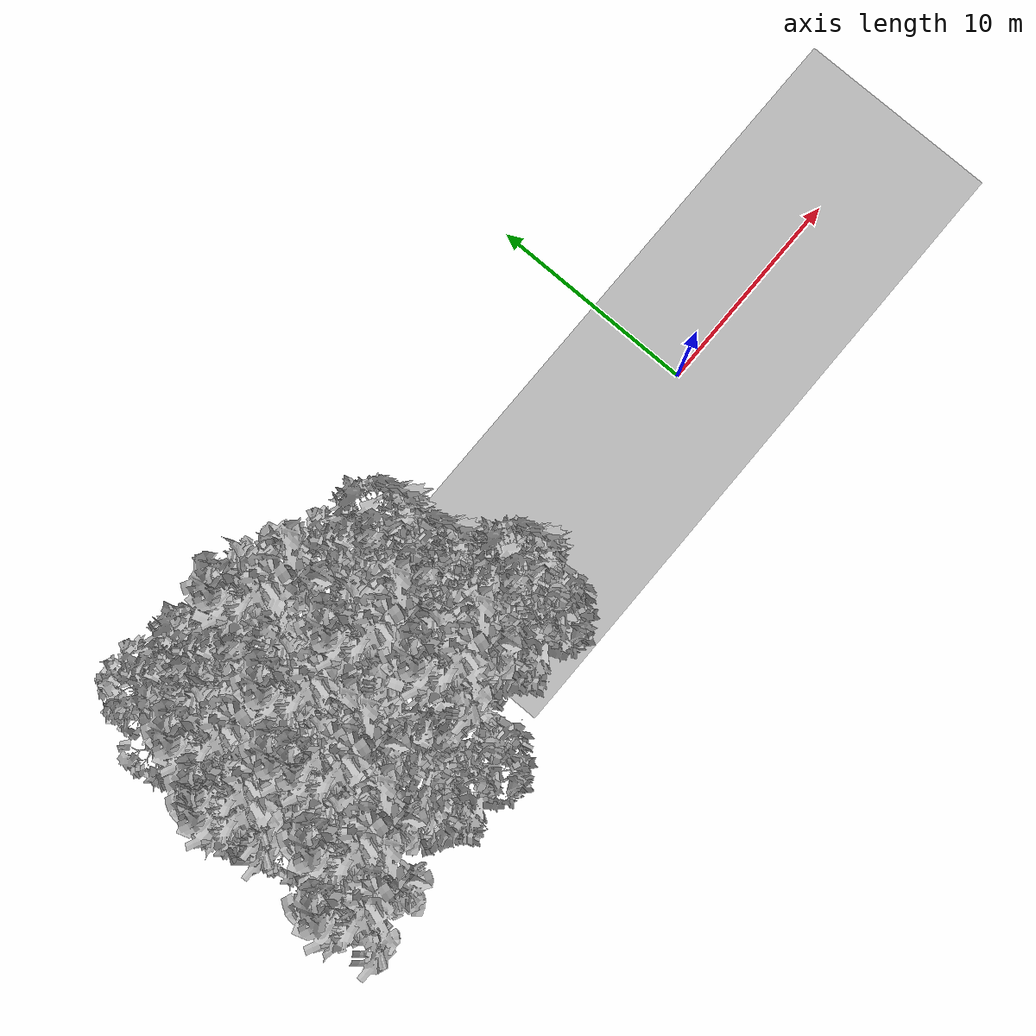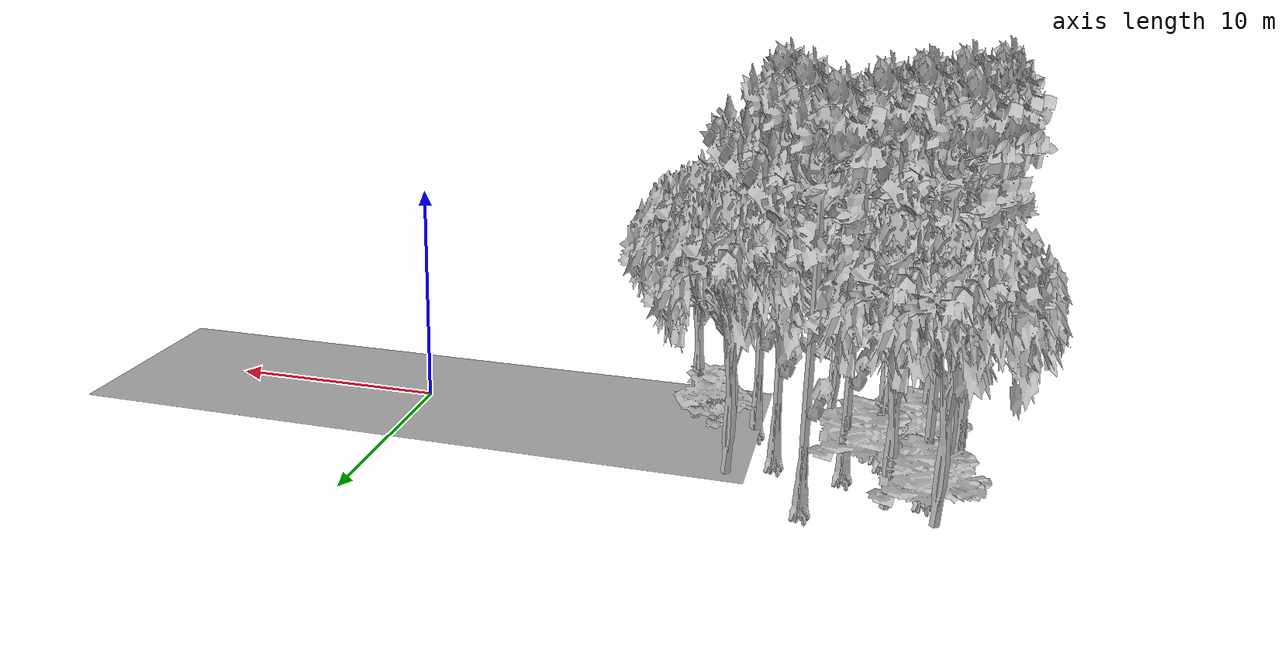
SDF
<sdf version="1.7">
 <world name="default">
  <model name="ground_plane">
   <static>1</static>
   <link name="link">
    <collision name="collision">
     <pose>-50 0 0 0 -0 0</pose>
     <geometry><plane><normal>0 0 1</normal><size>100 100</size></plane></geometry>
     <surface><contact><ode><min_depth>0.01</min_depth><max_vel>0</max_vel></ode></contact></surface>
    </collision>
    <visual name="grass">
     <cast_shadows>0</cast_shadows>
     <geometry>
      <mesh>
       <scale>0.5814285714285714 0.18142857142857144 0.1</scale>
       <uri>file://grass_plane/meshes/grass_plane.dae</uri>
      </mesh>
     </geometry>
    </visual>
   </link>
  </model>
  <model name="Tree 47">
   <static>1</static>
   <pose>-22.75616973259454 -0.32253832700187246 0 1.57079 -0 0</pose>
   <link name="link">
    <collision name="collision">
     <geometry><mesh><scale>3.5 5 3.5</scale><uri>model://tree_2/meshes/tree_2.obj</uri></mesh></geometry>
    </collision>
    <visual name="visual">
     <geometry><mesh><scale>3.5 5 3.5</scale><uri>model://tree_2/meshes/tree_2.obj</uri></mesh></geometry>
    </visual>
   </link>
  </model>
  <model name="Tree 49">
   <static>1</static>
   <pose>-20.24460554701781 1.1467806918927543 0 1.57079 -0 0</pose>
   <link name="link">
    <collision name="collision">
     <geometry><mesh><scale>3 2 3</scale><uri>model://tree_3/meshes/tree_3.obj</uri></mesh></geometry>
    </collision>
    <visual name="visual">
     <geometry><mesh><scale>3 2 3</scale><uri>model://tree_3/meshes/tree_3.obj</uri></mesh></geometry>
    </visual>
   </link>
  </model>
  <model name="Tree 56">
   <static>1</static>
   <pose>-14.953566524341966 4.036179544567759 0 1.57079 -0 0</pose>
   <link name="link">
    <collision name="collision">
     <geometry><mesh><scale>3.5 5 3.5</scale><uri>model://tree_2/meshes/tree_2.obj</uri></mesh></geometry>
    </collision>
    <visual name="visual">
     <geometry><mesh><scale>3.5 5 3.5</scale><uri>model://tree_2/meshes/tree_2.obj</uri></mesh></geometry>
    </visual>
   </link>
  </model>
  <model name="Tree 63">
   <static>1</static>
   <pose>-23.623978122664845 2.316026199521385 0 1.57079 -0 0</pose>
   <link name="link">
    <collision name="collision">
     <geometry><mesh><scale>3.5 5 3.5</scale><uri>model://tree_2/meshes/tree_2.obj</uri></mesh></geometry>
    </collision>
    <visual name="visual">
     <geometry><mesh><scale>3.5 5 3.5</scale><uri>model://tree_2/meshes/tree_2.obj</uri></mesh></geometry>
    </visual>
   </link>
  </model>
  <model name="Tree 66">
   <static>1</static>
   <pose>-22.752621306044094 3.8711710879960286 0 1.57079 -0 0</pose>
   <link name="link">
    <collision name="collision">
     <geometry><mesh><scale>3.5 5 3.5</scale><uri>model://tree_9/meshes/tree_9.obj</uri></mesh></geometry>
    </collision>
    <visual name="visual">
     <geometry><mesh><scale>3.5 5 3.5</scale><uri>model://tree_9/meshes/tree_9.obj</uri></mesh></geometry>
    </visual>
   </link>
  </model>
  <model name="Tree 80">
   <static>1</static>
   <pose>-16.627830058381754 2.1537166819877633 0 1.57079 -0 0</pose>
   <link name="link">
    <collision name="collision">
     <geometry><mesh><scale>3.5 5 3.5</scale><uri>model://tree_9/meshes/tree_9.obj</uri></mesh></geometry>
    </collision>
    <visual name="visual">
     <geometry><mesh><scale>3.5 5 3.5</scale><uri>model://tree_9/meshes/tree_9.obj</uri></mesh></geometry>
    </visual>
   </link>
  </model>
  <model name="Tree 107">
   <static>1</static>
   <pose>-21.402213130044238 5.264584405327611 0 1.57079 -0 0</pose>
   <link name="link">
    <collision name="collision">
     <geometry><mesh><scale>3.5 5 3.5</scale><uri>model://tree_2/meshes/tree_2.obj</uri></mesh></geometry>
    </collision>
    <visual name="visual">
     <geometry><mesh><scale>3.5 5 3.5</scale><uri>model://tree_2/meshes/tree_2.obj</uri></mesh></geometry>
    </visual>
   </link>
  </model>
  <model name="Tree 122">
   <static>1</static>
   <pose>-22.502827586471895 -2.2041947232821997 0 1.57079 -0 0</pose>
   <link name="link">
    <collision name="collision">
     <geometry><mesh><scale>3.5 5 3.5</scale><uri>model://tree_9/meshes/tree_9.obj</uri></mesh></geometry>
    </collision>
    <visual name="visual">
     <geometry><mesh><scale>3.5 5 3.5</scale><uri>model://tree_9/meshes/tree_9.obj</uri></mesh></geometry>
    </visual>
   </link>
  </model>
  <model name="Tree 170">
   <static>1</static>
   <pose>-13.70327283663351 -0.555348609005252 0 1.57079 -0 0</pose>
   <link name="link">
    <collision name="collision">
     <geometry><mesh><scale>4 2.5 4</scale><uri>model://tree_1/meshes/tree_1.obj</uri></mesh></geometry>
    </collision>
    <visual name="visual">
     <geometry><mesh><scale>4 2.5 4</scale><uri>model://tree_1/meshes/tree_1.obj</uri></mesh></geometry>
    </visual>
   </link>
  </model>
  <model name="Tree 222">
   <static>1</static>
   <pose>-12.723889425751864 -1.2077143229112188 0 1.57079 -0 0</pose>
   <link name="link">
    <collision name="collision">
     <geometry><mesh><scale>3.5 5 3.5</scale><uri>model://tree_2/meshes/tree_2.obj</uri></mesh></geometry>
    </collision>
    <visual name="visual">
     <geometry><mesh><scale>3.5 5 3.5</scale><uri>model://tree_2/meshes/tree_2.obj</uri></mesh></geometry>
    </visual>
   </link>
  </model>
  <model name="Tree 228">
   <static>1</static>
   <pose>-19.506041566082285 2.5999603417597967 0 1.57079 -0 0</pose>
   <link name="link">
    <collision name="collision">
     <geometry><mesh><scale>3.5 5 3.5</scale><uri>model://tree_9/meshes/tree_9.obj</uri></mesh></geometry>
    </collision>
    <visual name="visual">
     <geometry><mesh><scale>3.5 5 3.5</scale><uri>model://tree_9/meshes/tree_9.obj</uri></mesh></geometry>
    </visual>
   </link>
  </model>
  <model name="Tree 292">
   <static>1</static>
   <pose>-23.279006831194938 6.171527474826771 0 1.57079 -0 0</pose>
   <link name="link">
    <collision name="collision">
     <geometry><mesh><scale>3.5 5 3.5</scale><uri>model://tree_2/meshes/tree_2.obj</uri></mesh></geometry>
    </collision>
    <visual name="visual">
     <geometry><mesh><scale>3.5 5 3.5</scale><uri>model://tree_2/meshes/tree_2.obj</uri></mesh></geometry>
    </visual>
   </link>
  </model>
  <model name="Tree 328">
   <static>1</static>
   <pose>-18.688630125029814 -3.0465311169727567 0 1.57079 -0 0</pose>
   <link name="link">
    <collision name="collision">
     <geometry><mesh><scale>3.5 5 3.5</scale><uri>model://tree_2/meshes/tree_2.obj</uri></mesh></geometry>
    </collision>
    <visual name="visual">
     <geometry><mesh><scale>3.5 5 3.5</scale><uri>model://tree_2/meshes/tree_2.obj</uri></mesh></geometry>
    </visual>
   </link>
  </model>
  <model name="Tree 367">
   <static>1</static>
   <pose>-24.037741808238266 -3.7714261966051428 0 1.57079 -0 0</pose>
   <link name="link">
    <collision name="collision">
     <geometry><mesh><scale>3.5 5 3.5</scale><uri>model://tree_9/meshes/tree_9.obj</uri></mesh></geometry>
    </collision>
    <visual name="visual">
     <geometry><mesh><scale>3.5 5 3.5</scale><uri>model://tree_9/meshes/tree_9.obj</uri></mesh></geometry>
    </visual>
   </link>
  </model>
  <model name="Tree 382">
   <static>1</static>
   <pose>-20.854423746482208 0.03688399930246433 0 1.57079 -0 0</pose>
   <link name="link">
    <collision name="collision">
     <geometry><mesh><scale>3.5 5 3.5</scale><uri>model://tree_9/meshes/tree_9.obj</uri></mesh></geometry>
    </collision>
    <visual name="visual">
     <geometry><mesh><scale>3.5 5 3.5</scale><uri>model://tree_9/meshes/tree_9.obj</uri></mesh></geometry>
    </visual>
   </link>
  </model>
  <model name="Tree 387">
   <static>1</static>
   <pose>-24.04244366860218 1.582711865087294 0 1.57079 -0 0</pose>
   <link name="link">
    <collision name="collision">
     <geometry><mesh><scale>3.5 5 3.5</scale><uri>model://tree_9/meshes/tree_9.obj</uri></mesh></geometry>
    </collision>
    <visual name="visual">
     <geometry><mesh><scale>3.5 5 3.5</scale><uri>model://tree_9/meshes/tree_9.obj</uri></mesh></geometry>
    </visual>
   </link>
  </model>
  <model name="Tree 402">
   <static>1</static>
   <pose>-22.811562349588595 4.517693590641958 0 1.57079 -0 0</pose>
   <link name="link">
    <collision name="collision">
     <geometry><mesh><scale>3 2 3</scale><uri>model://tree_3/meshes/tree_3.obj</uri></mesh></geometry>
    </collision>
    <visual name="visual">
     <geometry><mesh><scale>3 2 3</scale><uri>model://tree_3/meshes/tree_3.obj</uri></mesh></geometry>
    </visual>
   </link>
  </model>
  <model name="Tree 406">
   <static>1</static>
   <pose>-18.1173764299624 6.102317622613132 0 1.57079 -0 0</pose>
   <link name="link">
    <collision name="collision">
     <geometry><mesh><scale>3.5 5 3.5</scale><uri>model://tree_9/meshes/tree_9.obj</uri></mesh></geometry>
    </collision>
    <visual name="visual">
     <geometry><mesh><scale>3.5 5 3.5</scale><uri>model://tree_9/meshes/tree_9.obj</uri></mesh></geometry>
    </visual>
   </link>
  </model>
  <model name="Tree 411">
   <static>1</static>
   <pose>-14.66898809571537 1.5664179188641292 0 1.57079 -0 0</pose>
   <link name="link">
    <collision name="collision">
     <geometry><mesh><scale>3.5 5 3.5</scale><uri>model://tree_2/meshes/tree_2.obj</uri></mesh></geometry>
    </collision>
    <visual name="visual">
     <geometry><mesh><scale>3.5 5 3.5</scale><uri>model://tree_2/meshes/tree_2.obj</uri></mesh></geometry>
    </visual>
   </link>
  </model>
  <model name="Tree 451">
   <static>1</static>
   <pose>-21.059121161608058 0.8199459969332583 0 1.57079 -0 0</pose>
   <link name="link">
    <collision name="collision">
     <geometry><mesh><scale>3.5 5 3.5</scale><uri>model://tree_9/meshes/tree_9.obj</uri></mesh></geometry>
    </collision>
    <visual name="visual">
     <geometry><mesh><scale>3.5 5 3.5</scale><uri>model://tree_9/meshes/tree_9.obj</uri></mesh></geometry>
    </visual>
   </link>
  </model>
  <model name="Tree 455">
   <static>1</static>
   <pose>-23.56785850936125 2.081537050865979 0 1.57079 -0 0</pose>
   <link name="link">
    <collision name="collision">
     <geometry><mesh><scale>3.5 5 3.5</scale><uri>model://tree_9/meshes/tree_9.obj</uri></mesh></geometry>
    </collision>
    <visual name="visual">
     <geometry><mesh><scale>3.5 5 3.5</scale><uri>model://tree_9/meshes/tree_9.obj</uri></mesh></geometry>
    </visual>
   </link>
  </model>
  <model name="Tree 478">
   <static>1</static>
   <pose>-22.228217955560524 -0.7152965717731004 0 1.57079 -0 0</pose>
   <link name="link">
    <collision name="collision">
     <geometry><mesh><scale>3 2 3</scale><uri>model://tree_3/meshes/tree_3.obj</uri></mesh></geometry>
    </collision>
    <visual name="visual">
     <geometry><mesh><scale>3 2 3</scale><uri>model://tree_3/meshes/tree_3.obj</uri></mesh></geometry>
    </visual>
   </link>
  </model>
  <model name="Tree 521">
   <static>1</static>
   <pose>-15.463534129788542 -0.7569884727429947 0 1.57079 -0 0</pose>
   <link name="link">
    <collision name="collision">
     <geometry><mesh><scale>3.5 5 3.5</scale><uri>model://tree_9/meshes/tree_9.obj</uri></mesh></geometry>
    </collision>
    <visual name="visual">
     <geometry><mesh><scale>3.5 5 3.5</scale><uri>model://tree_9/meshes/tree_9.obj</uri></mesh></geometry>
    </visual>
   </link>
  </model>
 </world>
</sdf>
